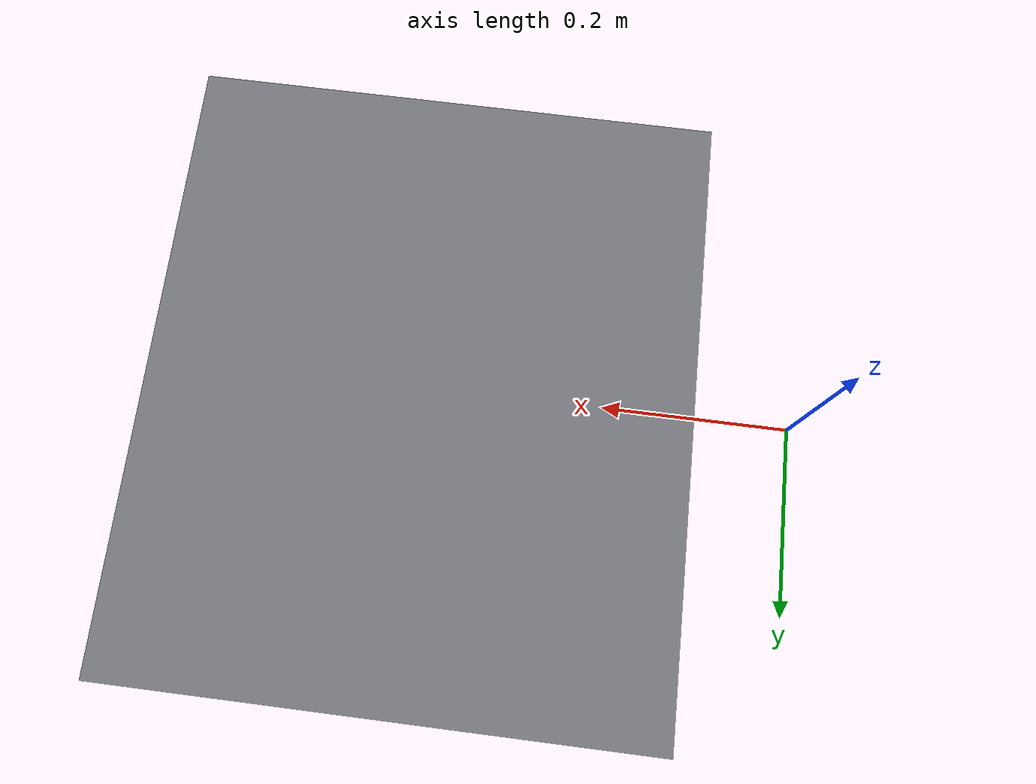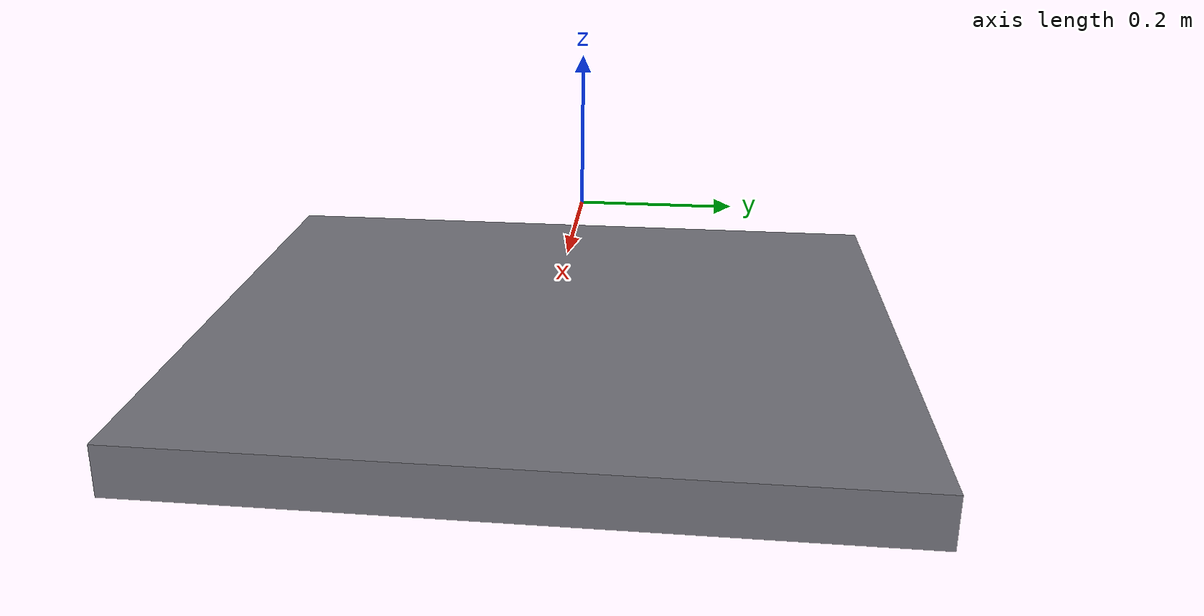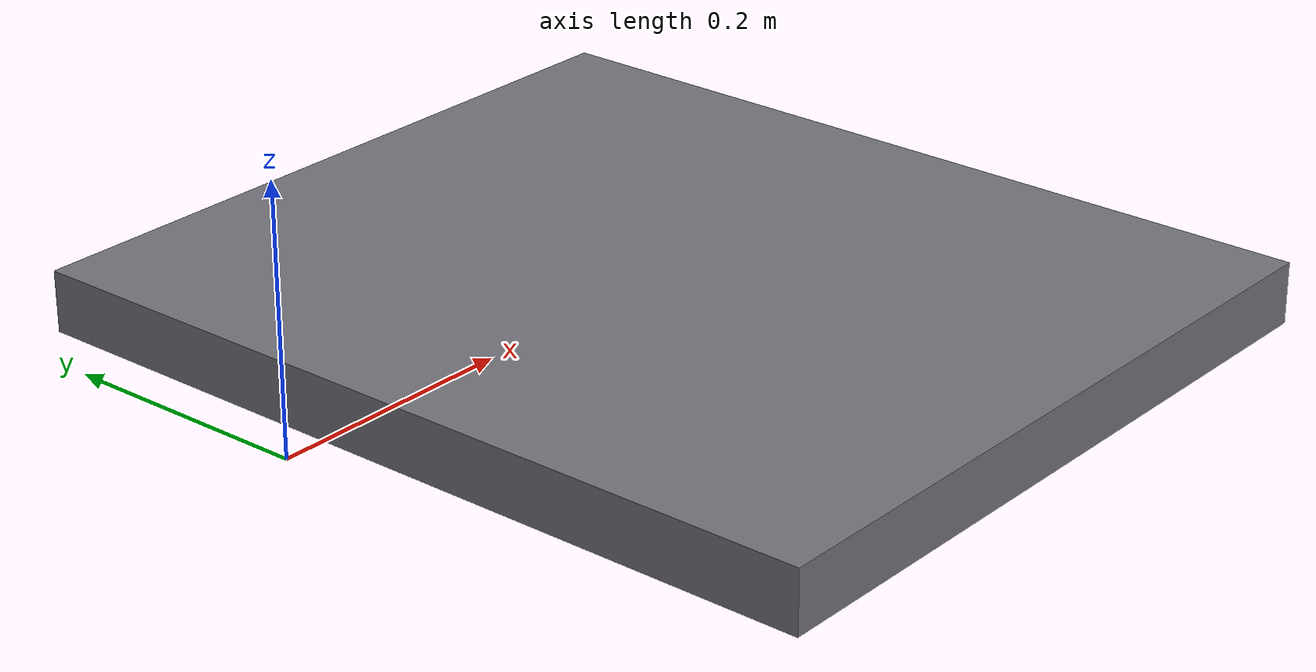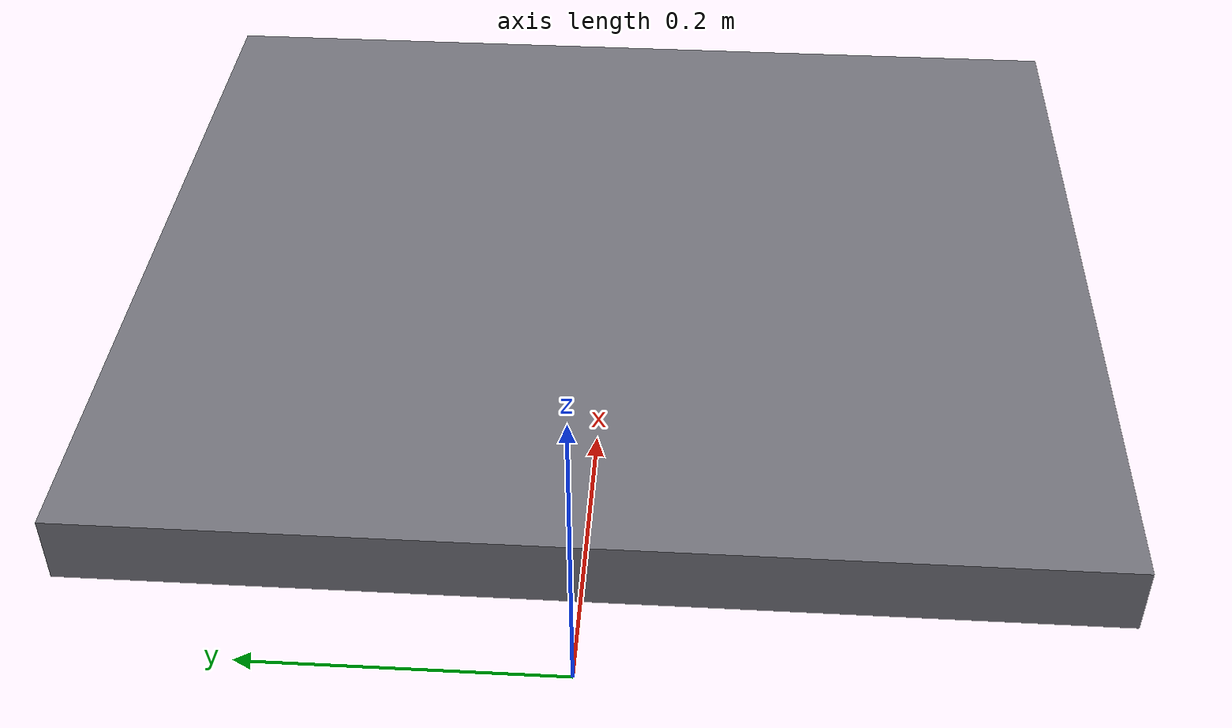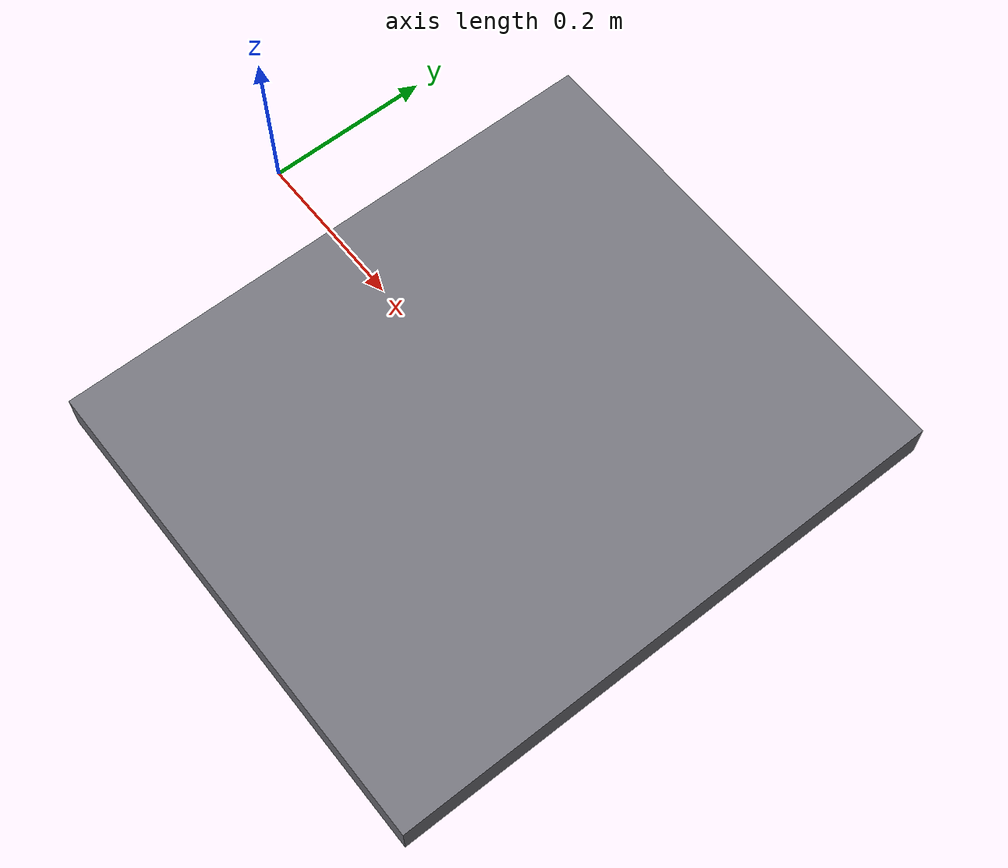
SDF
<?xml version="1.0" ?>
<sdf version="1.6">
  <world name="grasp_table">
    <gravity>0 0 -9.81</gravity>
    <physics type="ode">
      <max_step_size>0.001</max_step_size>
      <real_time_update_rate>1000</real_time_update_rate>
    </physics>
    <plugin name="gazebo_ros_state" filename="libgazebo_ros_state.so">
      <ros>
        <namespace>/gazebo</namespace>
      </ros>
      <update_rate>30.0</update_rate>
    </plugin>
    <plugin name="model_attachment_plugin" filename="libgazebo_model_attachment_plugin_lib.so"/>
    <include>
      <uri>model://sun</uri>
    </include>
    <model name="grasp_table">
      <static>true</static>
      <pose>0.40 0.00 -0.024 0 0 0</pose>
      <link name="table_link">
        <inertial>
          <mass>10.0</mass>
          <inertia>
            <ixx>0.410417</ixx><iyy>0.302083</iyy><izz>0.708333</izz>
            <ixy>0</ixy><ixz>0</ixz><iyz>0</iyz>
          </inertia>
        </inertial>
        <collision name="collision">
          <geometry><box><size>0.60 0.70 0.05</size></box></geometry>
        </collision>
        <visual name="visual">
          <geometry><box><size>0.60 0.70 0.05</size></box></geometry>
          <material>
            <ambient>0.35 0.35 0.38 1</ambient>
            <diffuse>0.45 0.45 0.48 1</diffuse>
          </material>
        </visual>
      </link>
    </model>
  </world>
</sdf>
